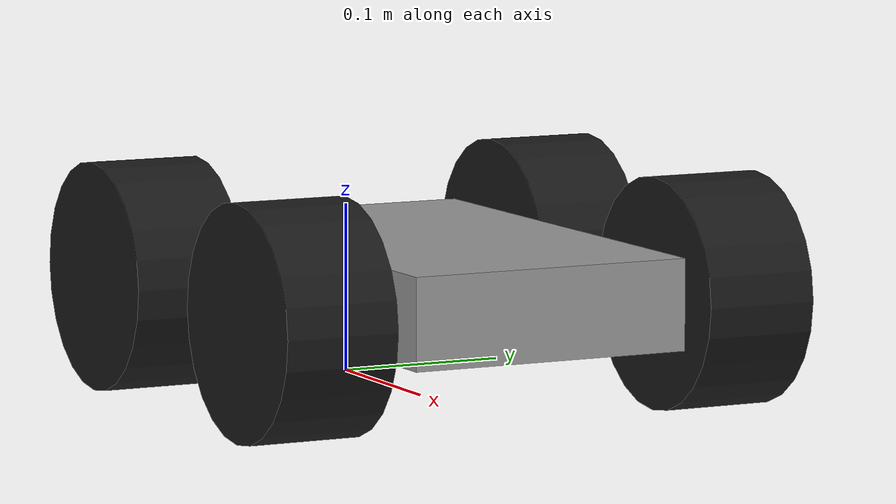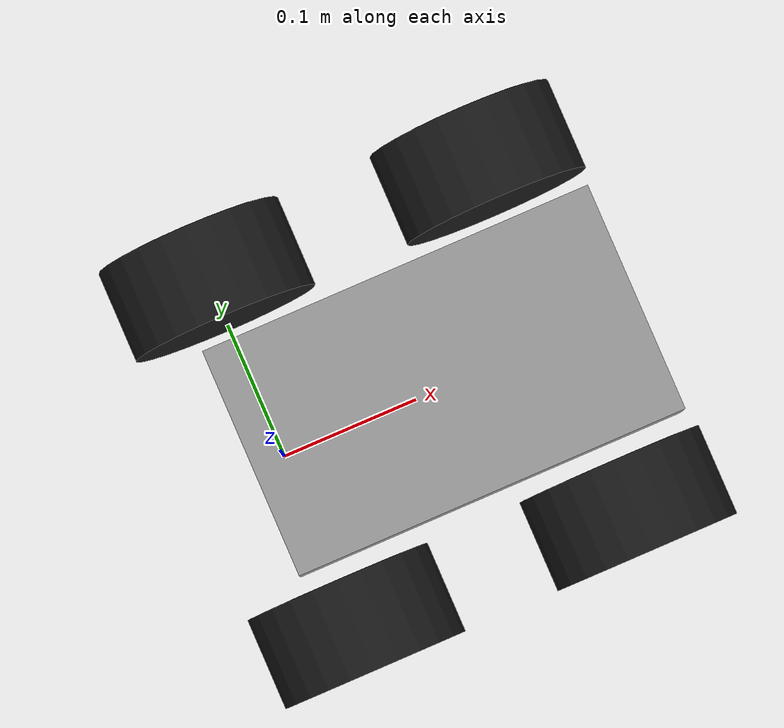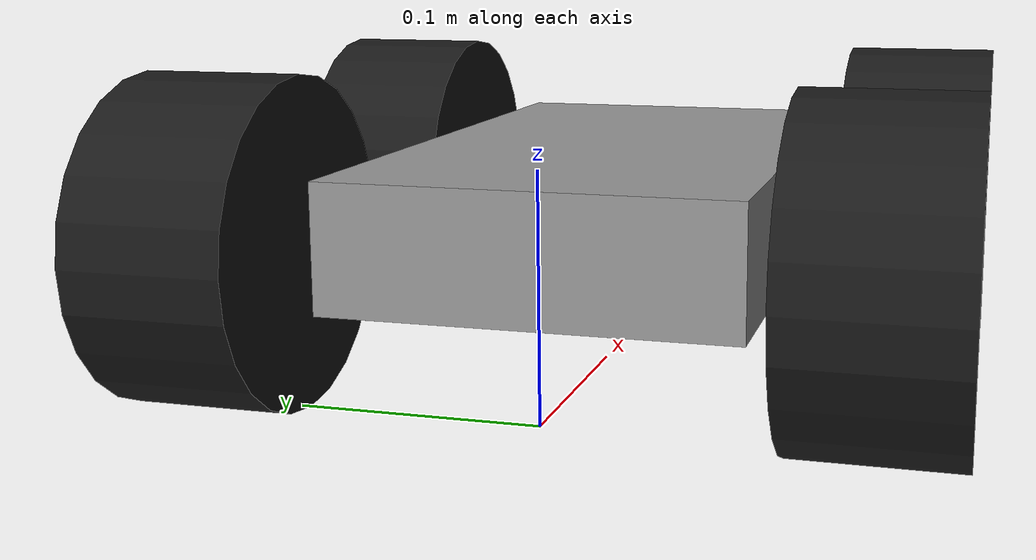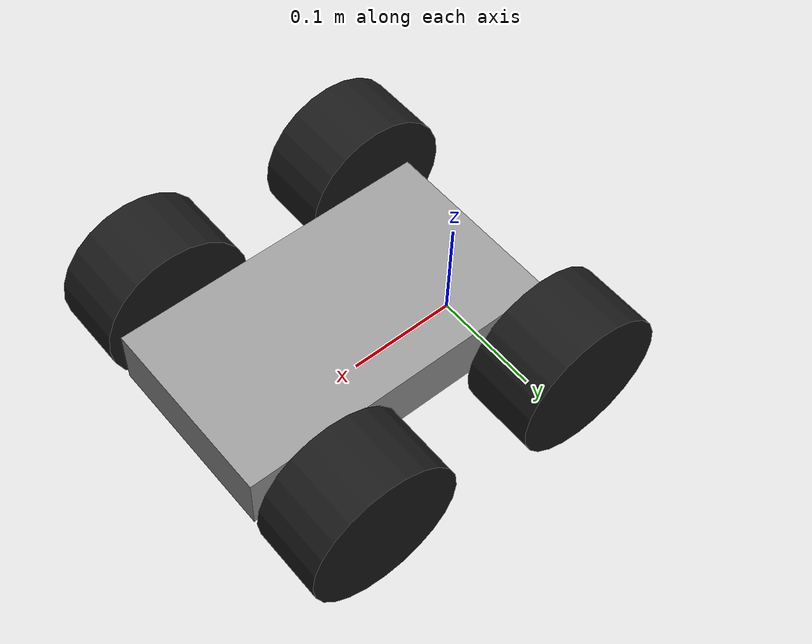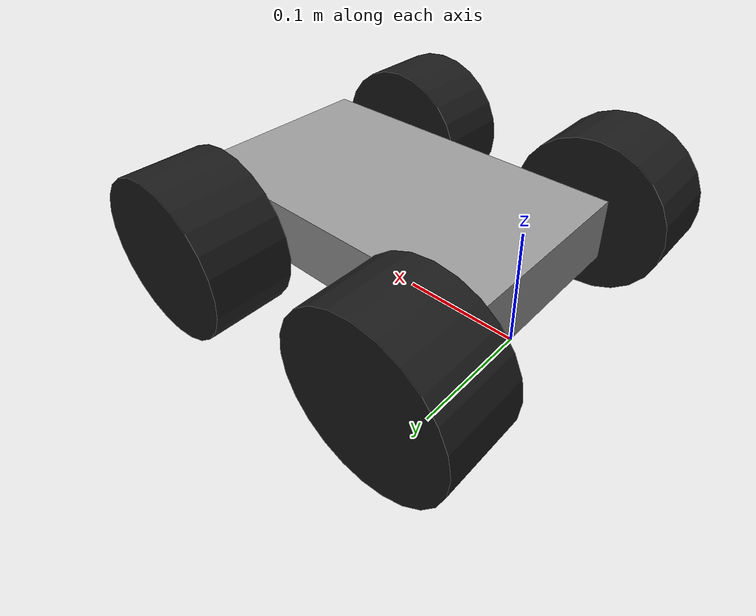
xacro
<?xml version="1.0"?>
<robot xmlns:xacro="http://www.ros.org/wiki/xacro">

    <!-- Geometry from docs/research/prototype-geometry.md (m). base_link = rear axle center. -->
    <xacro:property name="wheel_radius" value="0.06676"/>
    <xacro:property name="wheel_width" value="0.0656"/>
    <xacro:property name="wheelbase" value="0.20233"/>
    <xacro:property name="track" value="0.2584"/>
    <xacro:property name="ground_clearance" value="0.04355"/>

    <!-- Simplified body: lower deck from rear (x -0.022) to the depth camera face (x 0.26321). -->
    <xacro:property name="deck_x_min" value="-0.022"/>
    <xacro:property name="deck_x_max" value="0.26321"/>
    <xacro:property name="deck_width" value="0.166"/>
    <xacro:property name="deck_height" value="0.052"/>

    <material name="body_grey"><color rgba="0.6 0.6 0.6 1"/></material>
    <material name="tyre_black"><color rgba="0.1 0.1 0.1 1"/></material>

    <link name="base_footprint"/>

    <joint name="base_footprint_joint" type="fixed">
        <parent link="base_footprint"/>
        <child link="base_link"/>
        <origin xyz="0 0 ${wheel_radius}" rpy="0 0 0"/>
    </joint>

    <link name="base_link"/>

    <joint name="chassis_joint" type="fixed">
        <parent link="base_link"/>
        <child link="chassis"/>
        <origin xyz="${(deck_x_min + deck_x_max) / 2} 0 ${ground_clearance - wheel_radius + deck_height / 2}" rpy="0 0 0"/>
    </joint>

    <link name="chassis">
        <visual>
            <geometry><box size="${deck_x_max - deck_x_min} ${deck_width} ${deck_height}"/></geometry>
            <material name="body_grey"/>
        </visual>
        <collision>
            <geometry><box size="${deck_x_max - deck_x_min} ${deck_width} ${deck_height}"/></geometry>
        </collision>
    </link>

    <!-- Wheels: 4-wheel skid steer. Rear wheels carry encoders; front wheels do not. -->
    <xacro:macro name="wheel" params="name x y">
        <joint name="${name}_wheel_joint" type="continuous">
            <parent link="base_link"/>
            <child link="${name}_wheel"/>
            <origin xyz="${x} ${y} 0" rpy="${-pi/2} 0 0"/>
            <axis xyz="0 0 1"/>
        </joint>

        <link name="${name}_wheel">
            <visual>
                <geometry><cylinder radius="${wheel_radius}" length="${wheel_width}"/></geometry>
                <material name="tyre_black"/>
            </visual>
            <collision>
                <geometry><cylinder radius="${wheel_radius}" length="${wheel_width}"/></geometry>
            </collision>
        </link>
    </xacro:macro>

    <xacro:wheel name="rear_left" x="0" y="${track / 2}"/>
    <xacro:wheel name="rear_right" x="0" y="${-track / 2}"/>
    <xacro:wheel name="front_left" x="${wheelbase}" y="${track / 2}"/>
    <xacro:wheel name="front_right" x="${wheelbase}" y="${-track / 2}"/>

</robot>
